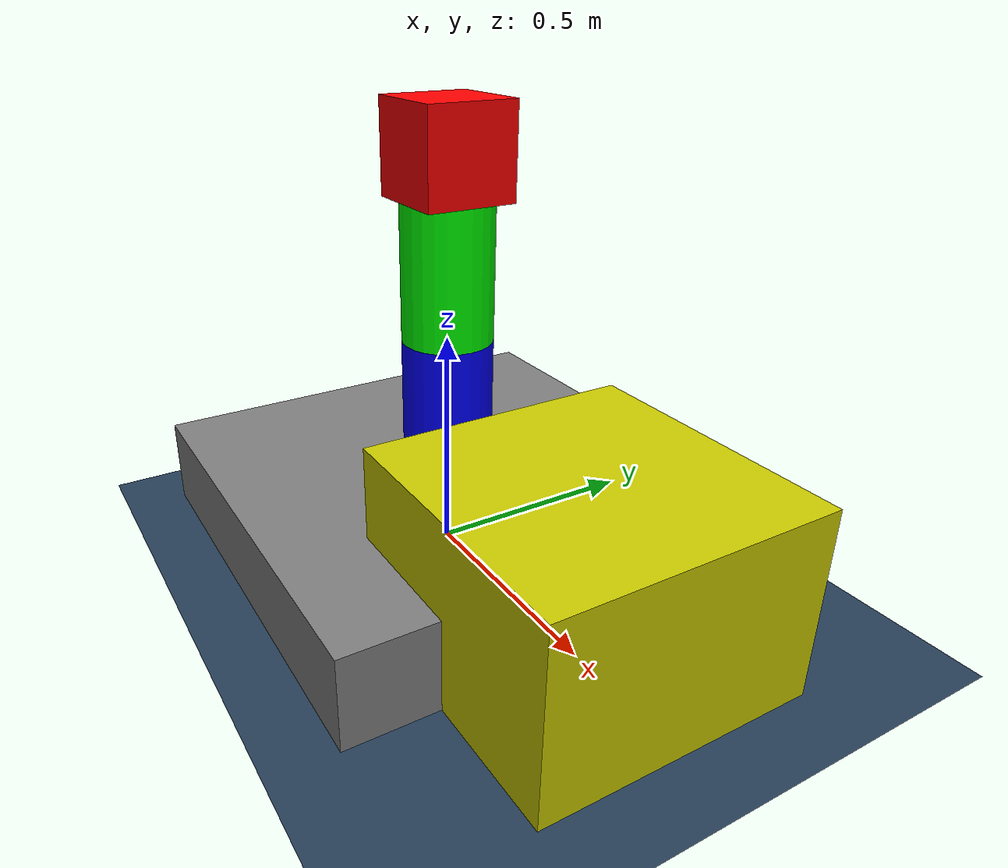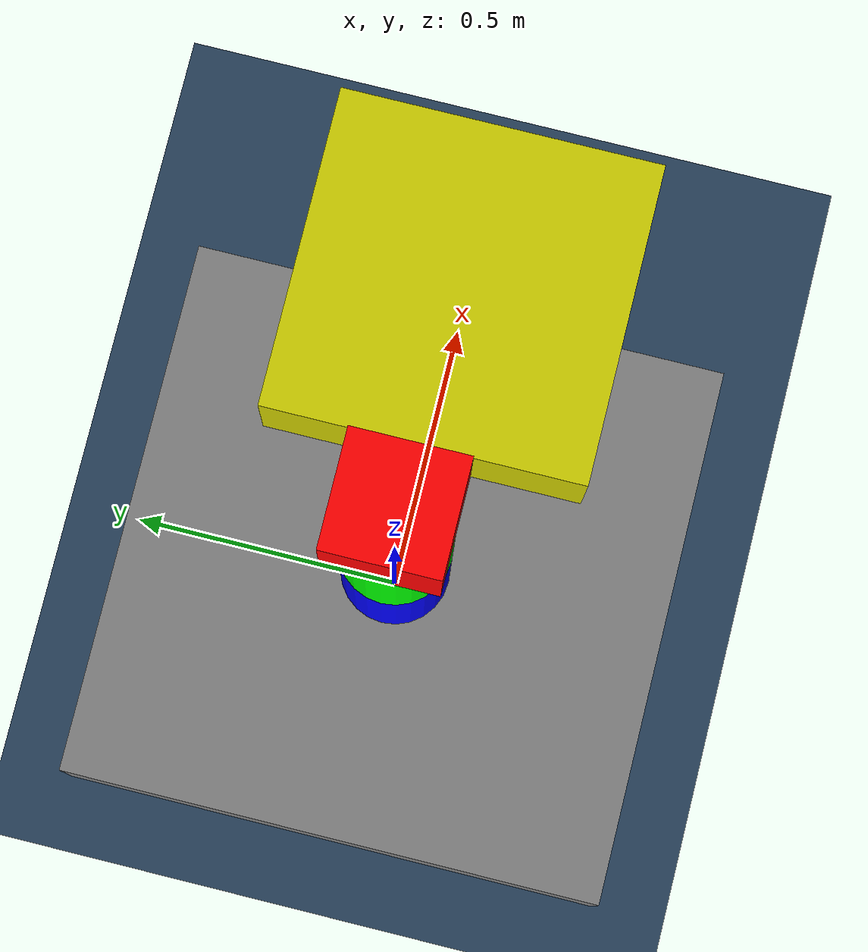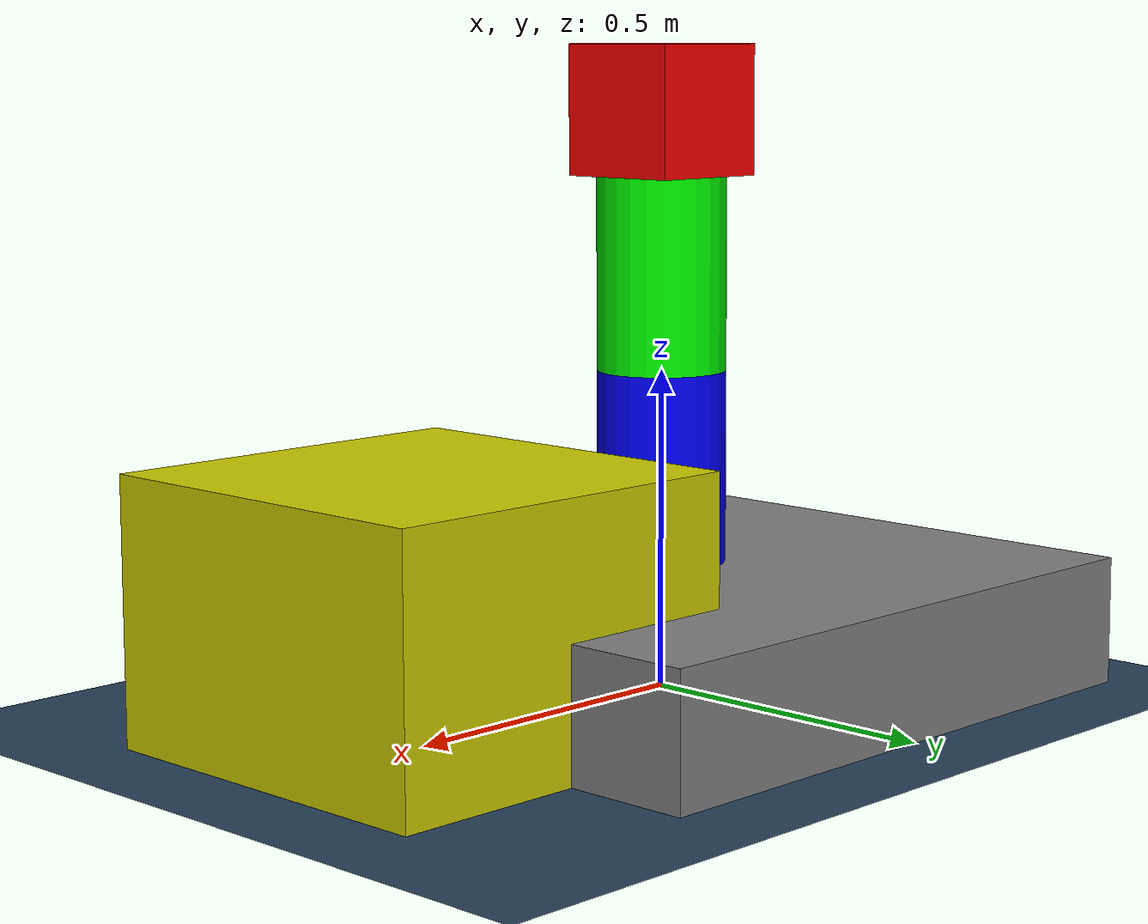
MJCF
<mujoco model="robot scene">
  <include file="robot.xml"/>

  <statistic center="0.3 0 0.4" extent="0.8"/>

  <visual>
    <headlight diffuse="0.6 0.6 0.6" ambient="0.1 0.1 0.1" specular="0 0 0"/>
    <rgba haze="0.15 0.25 0.35 1"/>
    <global azimuth="120" elevation="-20"/>
  </visual>

  <asset>
    <texture type="skybox" builtin="gradient" rgb1="0.3 0.5 0.7" rgb2="0 0 0" width="512" height="3072"/>
    <texture type="2d" name="groundplane" builtin="checker" mark="edge" rgb1="0.2 0.3 0.4" rgb2="0.1 0.2 0.3"
      markrgb="0.8 0.8 0.8" width="300" height="300"/>
    <material name="groundplane" texture="groundplane" texuniform="true" texrepeat="5 5" reflectance="0.2"/>
  </asset>

  <worldbody>
    <light pos="0 0 1.5" dir="0 0 -1" directional="true"/>
    <geom name="floor" size="0 0 0.05" type="plane" material="groundplane"/>
  </worldbody>
</mujoco>

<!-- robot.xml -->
<mujoco>
  <worldbody>
    <!-- Mobile Base -->
    <body name="base" pos="0 0 0.1">
      <joint name="base_joint" type="slide" axis="1 0 0" range="-10 10"/>
      <geom name="base_geom" type="box" size="0.5 0.5 0.1" rgba="0.5 0.5 0.5 1"/>

      <!-- Robotic Arm -->
      <body name="link1" pos="0 0 0.2">
        <joint name="joint1" type="hinge" axis="0 0 1" range="-90 90"/>
        <geom name="link1_geom" type="cylinder" size="0.1 0.2" rgba="0 0 1 1"/>

        <body name="link2" pos="0 0 0.4">
          <joint name="joint2" type="hinge" axis="0 1 0" range="-90 90"/>
          <geom name="link2_geom" type="cylinder" size="0.1 0.2" rgba="0 1 0 1"/>

          <!-- End Effector -->
          <body name="end_effector" pos="0 0 0.2">
            <geom name="ee_geom" type="box" size="0.1 0.1 0.1" rgba="1 0 0 1"/>
          </body>
        </body>
      </body>

      <!-- Storage Holder -->
      <body name="storage" pos="0.5 0 0.1">
        <geom name="storage_geom" type="box" size="0.3 0.3 0.2" rgba="0.8 0.8 0 1"/>
      </body>
    </body>
  </worldbody>

  <actuator>
    <motor name="base_motor" joint="base_joint" gear="1"/>
    <motor name="joint1_motor" joint="joint1" gear="1"/>
    <motor name="joint2_motor" joint="joint2" gear="1"/>
  </actuator>
</mujoco>
